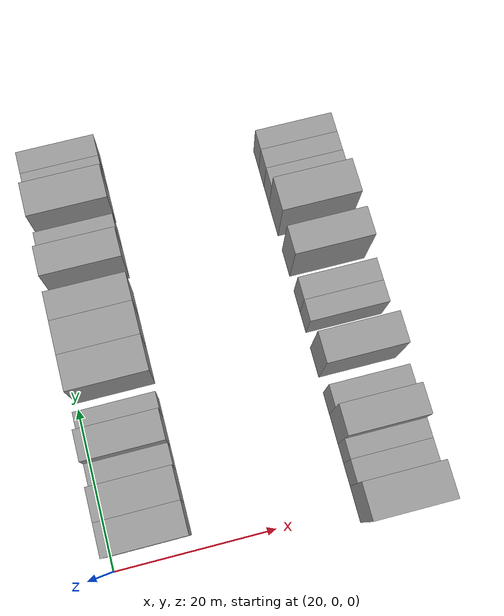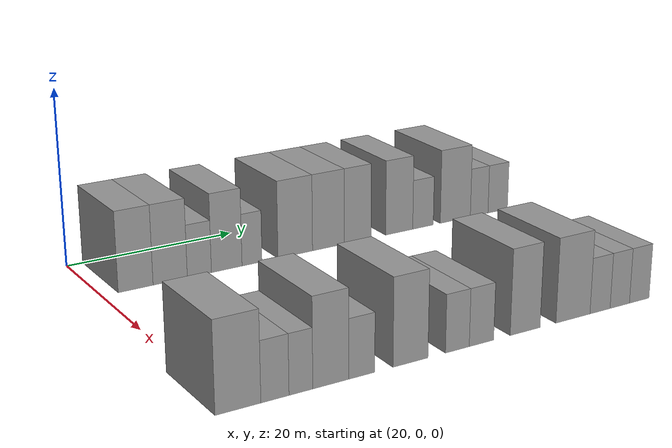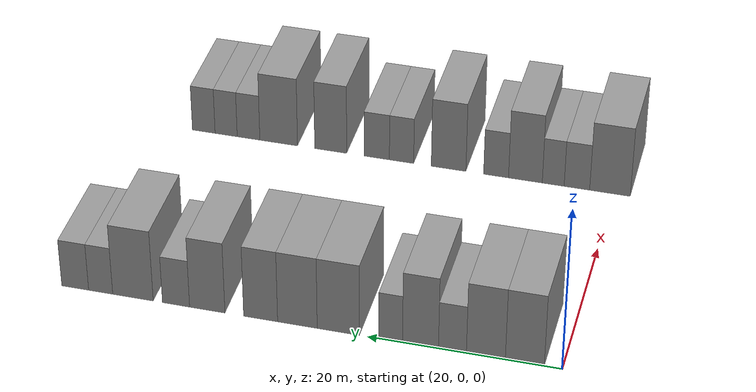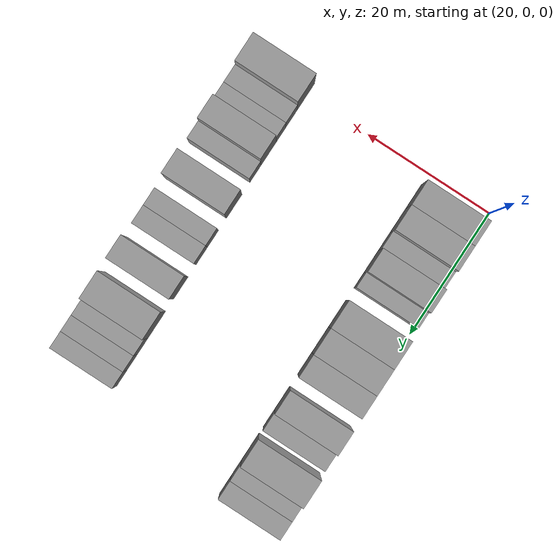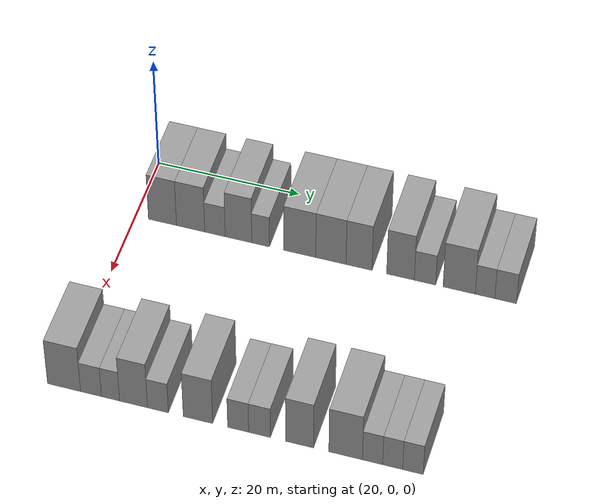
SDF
<sdf version="1.6">
 <world name="default">
  <model name="building_54">
   <static>1</static>
   <pose>25.0000 3.8221 0 0.000000 0.000000 0.000000</pose>
   <link name="link">
    <pose>0 0 4.50 0 0 0</pose>
    <collision name="collision"><geometry><box><size>10.0000 3.9604 9.0000</size></box></geometry></collision>
    <visual name="visual">
     <cast_shadows>0</cast_shadows>
     <geometry><box><size>10.0000 3.9604 9.0000</size></box></geometry>
     <material>
      <script>
       <uri>model://grey_wall/materials/scripts</uri>
       <uri>model://grey_wall/materials/textures</uri>
       <name>vrc/grey_wall</name>
      </script>
     </material>
    </visual>
   </link>
  </model>
  <model name="building_55">
   <static>1</static>
   <pose>25.0000 7.7938 0 0.000000 0.000000 0.000000</pose>
   <link name="link">
    <pose>0 0 4.50 0 0 0</pose>
    <collision name="collision"><geometry><box><size>10.0000 3.9830 9.0000</size></box></geometry></collision>
    <visual name="visual">
     <cast_shadows>0</cast_shadows>
     <geometry><box><size>10.0000 3.9830 9.0000</size></box></geometry>
     <material>
      <script>
       <uri>model://grey_wall/materials/scripts</uri>
       <uri>model://grey_wall/materials/textures</uri>
       <name>vrc/grey_wall</name>
      </script>
     </material>
    </visual>
   </link>
  </model>
  <model name="building_56">
   <static>1</static>
   <pose>25.0000 11.2202 0 0.000000 0.000000 0.000000</pose>
   <link name="link">
    <pose>0 0 3.00 0 0 0</pose>
    <collision name="collision"><geometry><box><size>10.0000 2.8698 6.0000</size></box></geometry></collision>
    <visual name="visual">
     <cast_shadows>0</cast_shadows>
     <geometry><box><size>10.0000 2.8698 6.0000</size></box></geometry>
     <material>
      <script>
       <uri>model://grey_wall/materials/scripts</uri>
       <uri>model://grey_wall/materials/textures</uri>
       <name>vrc/grey_wall</name>
      </script>
     </material>
    </visual>
   </link>
  </model>
  <model name="building_57">
   <static>1</static>
   <pose>25.0000 14.5161 0 0.000000 0.000000 0.000000</pose>
   <link name="link">
    <pose>0 0 4.50 0 0 0</pose>
    <collision name="collision"><geometry><box><size>10.0000 3.7220 9.0000</size></box></geometry></collision>
    <visual name="visual">
     <cast_shadows>0</cast_shadows>
     <geometry><box><size>10.0000 3.7220 9.0000</size></box></geometry>
     <material>
      <script>
       <uri>model://grey_wall/materials/scripts</uri>
       <uri>model://grey_wall/materials/textures</uri>
       <name>vrc/grey_wall</name>
      </script>
     </material>
    </visual>
   </link>
  </model>
  <model name="building_58">
   <static>1</static>
   <pose>25.0000 17.6144 0 0.000000 0.000000 0.000000</pose>
   <link name="link">
    <pose>0 0 3.00 0 0 0</pose>
    <collision name="collision"><geometry><box><size>10.0000 2.4745 6.0000</size></box></geometry></collision>
    <visual name="visual">
     <cast_shadows>0</cast_shadows>
     <geometry><box><size>10.0000 2.4745 6.0000</size></box></geometry>
     <material>
      <script>
       <uri>model://grey_wall/materials/scripts</uri>
       <uri>model://grey_wall/materials/textures</uri>
       <name>vrc/grey_wall</name>
      </script>
     </material>
    </visual>
   </link>
  </model>
  <model name="building_59">
   <static>1</static>
   <pose>25.0000 23.0689 0 0.000000 0.000000 0.000000</pose>
   <link name="link">
    <pose>0 0 4.50 0 0 0</pose>
    <collision name="collision"><geometry><box><size>10.0000 4.4346 9.0000</size></box></geometry></collision>
    <visual name="visual">
     <cast_shadows>0</cast_shadows>
     <geometry><box><size>10.0000 4.4346 9.0000</size></box></geometry>
     <material>
      <script>
       <uri>model://grey_wall/materials/scripts</uri>
       <uri>model://grey_wall/materials/textures</uri>
       <name>vrc/grey_wall</name>
      </script>
     </material>
    </visual>
   </link>
  </model>
  <model name="building_60">
   <static>1</static>
   <pose>25.0000 27.3746 0 0.000000 0.000000 0.000000</pose>
   <link name="link">
    <pose>0 0 4.50 0 0 0</pose>
    <collision name="collision"><geometry><box><size>10.0000 4.1768 9.0000</size></box></geometry></collision>
    <visual name="visual">
     <cast_shadows>0</cast_shadows>
     <geometry><box><size>10.0000 4.1768 9.0000</size></box></geometry>
     <material>
      <script>
       <uri>model://grey_wall/materials/scripts</uri>
       <uri>model://grey_wall/materials/textures</uri>
       <name>vrc/grey_wall</name>
      </script>
     </material>
    </visual>
   </link>
  </model>
  <model name="building_61">
   <static>1</static>
   <pose>25.0000 31.2651 0 0.000000 0.000000 0.000000</pose>
   <link name="link">
    <pose>0 0 4.50 0 0 0</pose>
    <collision name="collision"><geometry><box><size>10.0000 3.6042 9.0000</size></box></geometry></collision>
    <visual name="visual">
     <cast_shadows>0</cast_shadows>
     <geometry><box><size>10.0000 3.6042 9.0000</size></box></geometry>
     <material>
      <script>
       <uri>model://grey_wall/materials/scripts</uri>
       <uri>model://grey_wall/materials/textures</uri>
       <name>vrc/grey_wall</name>
      </script>
     </material>
    </visual>
   </link>
  </model>
  <model name="building_62">
   <static>1</static>
   <pose>25.0000 36.9621 0 0.000000 0.000000 0.000000</pose>
   <link name="link">
    <pose>0 0 4.50 0 0 0</pose>
    <collision name="collision"><geometry><box><size>10.0000 3.7897 9.0000</size></box></geometry></collision>
    <visual name="visual">
     <cast_shadows>0</cast_shadows>
     <geometry><box><size>10.0000 3.7897 9.0000</size></box></geometry>
     <material>
      <script>
       <uri>model://grey_wall/materials/scripts</uri>
       <uri>model://grey_wall/materials/textures</uri>
       <name>vrc/grey_wall</name>
      </script>
     </material>
    </visual>
   </link>
  </model>
  <model name="building_63">
   <static>1</static>
   <pose>25.0000 40.3198 0 0.000000 0.000000 0.000000</pose>
   <link name="link">
    <pose>0 0 3.00 0 0 0</pose>
    <collision name="collision"><geometry><box><size>10.0000 2.9256 6.0000</size></box></geometry></collision>
    <visual name="visual">
     <cast_shadows>0</cast_shadows>
     <geometry><box><size>10.0000 2.9256 6.0000</size></box></geometry>
     <material>
      <script>
       <uri>model://grey_wall/materials/scripts</uri>
       <uri>model://grey_wall/materials/textures</uri>
       <name>vrc/grey_wall</name>
      </script>
     </material>
    </visual>
   </link>
  </model>
  <model name="building_64">
   <static>1</static>
   <pose>25.0000 44.9827 0 0.000000 0.000000 0.000000</pose>
   <link name="link">
    <pose>0 0 4.50 0 0 0</pose>
    <collision name="collision"><geometry><box><size>10.0000 4.4003 9.0000</size></box></geometry></collision>
    <visual name="visual">
     <cast_shadows>0</cast_shadows>
     <geometry><box><size>10.0000 4.4003 9.0000</size></box></geometry>
     <material>
      <script>
       <uri>model://grey_wall/materials/scripts</uri>
       <uri>model://grey_wall/materials/textures</uri>
       <name>vrc/grey_wall</name>
      </script>
     </material>
    </visual>
   </link>
  </model>
  <model name="building_65">
   <static>1</static>
   <pose>25.0000 48.4981 0 0.000000 0.000000 0.000000</pose>
   <link name="link">
    <pose>0 0 3.00 0 0 0</pose>
    <collision name="collision"><geometry><box><size>10.0000 2.6304 6.0000</size></box></geometry></collision>
    <visual name="visual">
     <cast_shadows>0</cast_shadows>
     <geometry><box><size>10.0000 2.6304 6.0000</size></box></geometry>
     <material>
      <script>
       <uri>model://grey_wall/materials/scripts</uri>
       <uri>model://grey_wall/materials/textures</uri>
       <name>vrc/grey_wall</name>
      </script>
     </material>
    </visual>
   </link>
  </model>
  <model name="building_66">
   <static>1</static>
   <pose>25.0000 51.2826 0 0.000000 0.000000 0.000000</pose>
   <link name="link">
    <pose>0 0 3.00 0 0 0</pose>
    <collision name="collision"><geometry><box><size>10.0000 2.9387 6.0000</size></box></geometry></collision>
    <visual name="visual">
     <cast_shadows>0</cast_shadows>
     <geometry><box><size>10.0000 2.9387 6.0000</size></box></geometry>
     <material>
      <script>
       <uri>model://grey_wall/materials/scripts</uri>
       <uri>model://grey_wall/materials/textures</uri>
       <name>vrc/grey_wall</name>
      </script>
     </material>
    </visual>
   </link>
  </model>
  <model name="building_164">
   <static>1</static>
   <pose>55.0000 0.4347 0 0.000000 0.000000 0.000000</pose>
   <link name="link">
    <pose>0 0 4.50 0 0 0</pose>
    <collision name="collision"><geometry><box><size>10.0000 4.4855 9.0000</size></box></geometry></collision>
    <visual name="visual">
     <cast_shadows>0</cast_shadows>
     <geometry><box><size>10.0000 4.4855 9.0000</size></box></geometry>
     <material>
      <script>
       <uri>model://grey_wall/materials/scripts</uri>
       <uri>model://grey_wall/materials/textures</uri>
       <name>vrc/grey_wall</name>
      </script>
     </material>
    </visual>
   </link>
  </model>
  <model name="building_165">
   <static>1</static>
   <pose>55.0000 4.0913 0 0.000000 0.000000 0.000000</pose>
   <link name="link">
    <pose>0 0 3.00 0 0 0</pose>
    <collision name="collision"><geometry><box><size>10.0000 2.8278 6.0000</size></box></geometry></collision>
    <visual name="visual">
     <cast_shadows>0</cast_shadows>
     <geometry><box><size>10.0000 2.8278 6.0000</size></box></geometry>
     <material>
      <script>
       <uri>model://grey_wall/materials/scripts</uri>
       <uri>model://grey_wall/materials/textures</uri>
       <name>vrc/grey_wall</name>
      </script>
     </material>
    </visual>
   </link>
  </model>
  <model name="building_166">
   <static>1</static>
   <pose>55.0000 6.7241 0 0.000000 0.000000 0.000000</pose>
   <link name="link">
    <pose>0 0 3.00 0 0 0</pose>
    <collision name="collision"><geometry><box><size>10.0000 2.4378 6.0000</size></box></geometry></collision>
    <visual name="visual">
     <cast_shadows>0</cast_shadows>
     <geometry><box><size>10.0000 2.4378 6.0000</size></box></geometry>
     <material>
      <script>
       <uri>model://grey_wall/materials/scripts</uri>
       <uri>model://grey_wall/materials/textures</uri>
       <name>vrc/grey_wall</name>
      </script>
     </material>
    </visual>
   </link>
  </model>
  <model name="building_167">
   <static>1</static>
   <pose>55.0000 9.8292 0 0.000000 0.000000 0.000000</pose>
   <link name="link">
    <pose>0 0 4.50 0 0 0</pose>
    <collision name="collision"><geometry><box><size>10.0000 3.7723 9.0000</size></box></geometry></collision>
    <visual name="visual">
     <cast_shadows>0</cast_shadows>
     <geometry><box><size>10.0000 3.7723 9.0000</size></box></geometry>
     <material>
      <script>
       <uri>model://grey_wall/materials/scripts</uri>
       <uri>model://grey_wall/materials/textures</uri>
       <name>vrc/grey_wall</name>
      </script>
     </material>
    </visual>
   </link>
  </model>
  <model name="building_168">
   <static>1</static>
   <pose>55.0000 13.1143 0 0.000000 0.000000 0.000000</pose>
   <link name="link">
    <pose>0 0 3.00 0 0 0</pose>
    <collision name="collision"><geometry><box><size>10.0000 2.7979 6.0000</size></box></geometry></collision>
    <visual name="visual">
     <cast_shadows>0</cast_shadows>
     <geometry><box><size>10.0000 2.7979 6.0000</size></box></geometry>
     <material>
      <script>
       <uri>model://grey_wall/materials/scripts</uri>
       <uri>model://grey_wall/materials/textures</uri>
       <name>vrc/grey_wall</name>
      </script>
     </material>
    </visual>
   </link>
  </model>
  <model name="building_169">
   <static>1</static>
   <pose>55.0000 18.4748 0 0.000000 0.000000 0.000000</pose>
   <link name="link">
    <pose>0 0 4.50 0 0 0</pose>
    <collision name="collision"><geometry><box><size>10.0000 3.9231 9.0000</size></box></geometry></collision>
    <visual name="visual">
     <cast_shadows>0</cast_shadows>
     <geometry><box><size>10.0000 3.9231 9.0000</size></box></geometry>
     <material>
      <script>
       <uri>model://grey_wall/materials/scripts</uri>
       <uri>model://grey_wall/materials/textures</uri>
       <name>vrc/grey_wall</name>
      </script>
     </material>
    </visual>
   </link>
  </model>
  <model name="building_170">
   <static>1</static>
   <pose>55.0000 23.8257 0 0.000000 0.000000 0.000000</pose>
   <link name="link">
    <pose>0 0 3.00 0 0 0</pose>
    <collision name="collision"><geometry><box><size>10.0000 2.7786 6.0000</size></box></geometry></collision>
    <visual name="visual">
     <cast_shadows>0</cast_shadows>
     <geometry><box><size>10.0000 2.7786 6.0000</size></box></geometry>
     <material>
      <script>
       <uri>model://grey_wall/materials/scripts</uri>
       <uri>model://grey_wall/materials/textures</uri>
       <name>vrc/grey_wall</name>
      </script>
     </material>
    </visual>
   </link>
  </model>
  <model name="building_171">
   <static>1</static>
   <pose>55.0000 26.6668 0 0.000000 0.000000 0.000000</pose>
   <link name="link">
    <pose>0 0 3.00 0 0 0</pose>
    <collision name="collision"><geometry><box><size>10.0000 2.9037 6.0000</size></box></geometry></collision>
    <visual name="visual">
     <cast_shadows>0</cast_shadows>
     <geometry><box><size>10.0000 2.9037 6.0000</size></box></geometry>
     <material>
      <script>
       <uri>model://grey_wall/materials/scripts</uri>
       <uri>model://grey_wall/materials/textures</uri>
       <name>vrc/grey_wall</name>
      </script>
     </material>
    </visual>
   </link>
  </model>
  <model name="building_172">
   <static>1</static>
   <pose>55.0000 31.9645 0 0.000000 0.000000 0.000000</pose>
   <link name="link">
    <pose>0 0 4.50 0 0 0</pose>
    <collision name="collision"><geometry><box><size>10.0000 3.6917 9.0000</size></box></geometry></collision>
    <visual name="visual">
     <cast_shadows>0</cast_shadows>
     <geometry><box><size>10.0000 3.6917 9.0000</size></box></geometry>
     <material>
      <script>
       <uri>model://grey_wall/materials/scripts</uri>
       <uri>model://grey_wall/materials/textures</uri>
       <name>vrc/grey_wall</name>
      </script>
     </material>
    </visual>
   </link>
  </model>
  <model name="building_173">
   <static>1</static>
   <pose>55.0000 38.0075 0 0.000000 0.000000 0.000000</pose>
   <link name="link">
    <pose>0 0 4.50 0 0 0</pose>
    <collision name="collision"><geometry><box><size>10.0000 4.3944 9.0000</size></box></geometry></collision>
    <visual name="visual">
     <cast_shadows>0</cast_shadows>
     <geometry><box><size>10.0000 4.3944 9.0000</size></box></geometry>
     <material>
      <script>
       <uri>model://grey_wall/materials/scripts</uri>
       <uri>model://grey_wall/materials/textures</uri>
       <name>vrc/grey_wall</name>
      </script>
     </material>
    </visual>
   </link>
  </model>
  <model name="building_174">
   <static>1</static>
   <pose>55.0000 41.5316 0 0.000000 0.000000 0.000000</pose>
   <link name="link">
    <pose>0 0 3.00 0 0 0</pose>
    <collision name="collision"><geometry><box><size>10.0000 2.6538 6.0000</size></box></geometry></collision>
    <visual name="visual">
     <cast_shadows>0</cast_shadows>
     <geometry><box><size>10.0000 2.6538 6.0000</size></box></geometry>
     <material>
      <script>
       <uri>model://grey_wall/materials/scripts</uri>
       <uri>model://grey_wall/materials/textures</uri>
       <name>vrc/grey_wall</name>
      </script>
     </material>
    </visual>
   </link>
  </model>
  <model name="building_175">
   <static>1</static>
   <pose>55.0000 44.1593 0 0.000000 0.000000 0.000000</pose>
   <link name="link">
    <pose>0 0 3.00 0 0 0</pose>
    <collision name="collision"><geometry><box><size>10.0000 2.6015 6.0000</size></box></geometry></collision>
    <visual name="visual">
     <cast_shadows>0</cast_shadows>
     <geometry><box><size>10.0000 2.6015 6.0000</size></box></geometry>
     <material>
      <script>
       <uri>model://grey_wall/materials/scripts</uri>
       <uri>model://grey_wall/materials/textures</uri>
       <name>vrc/grey_wall</name>
      </script>
     </material>
    </visual>
   </link>
  </model>
  <model name="building_176">
   <static>1</static>
   <pose>55.0000 46.7968 0 0.000000 0.000000 0.000000</pose>
   <link name="link">
    <pose>0 0 3.00 0 0 0</pose>
    <collision name="collision"><geometry><box><size>10.0000 2.6736 6.0000</size></box></geometry></collision>
    <visual name="visual">
     <cast_shadows>0</cast_shadows>
     <geometry><box><size>10.0000 2.6736 6.0000</size></box></geometry>
     <material>
      <script>
       <uri>model://grey_wall/materials/scripts</uri>
       <uri>model://grey_wall/materials/textures</uri>
       <name>vrc/grey_wall</name>
      </script>
     </material>
    </visual>
   </link>
  </model>
 </world>
</sdf>
